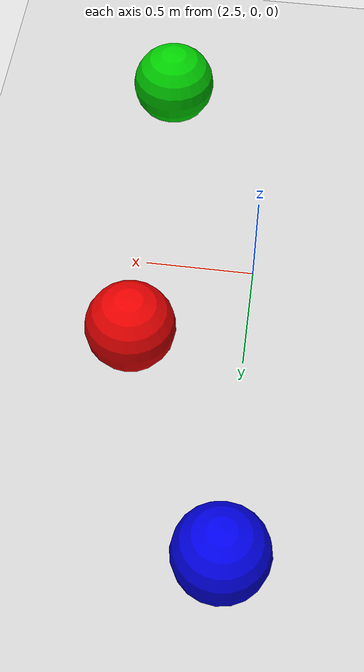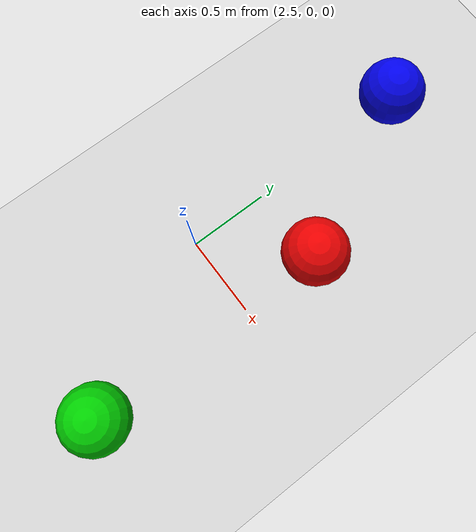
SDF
<?xml version="1.0" ?>
<sdf version="1.6">
  <world name="ball_world">

    <!-- Minimal lighting -->
    <light name="sun" type="directional">
      <cast_shadows>false</cast_shadows>
      <pose>0 0 10 0 0 0</pose>
      <diffuse>0.8 0.8 0.8 1</diffuse>
      <specular>0.0 0.0 0.0 1</specular>
      <direction>0.5 0.1 -0.9</direction>
    </light>

    <!-- Ground plane -->
    <model name="ground_plane">
      <static>true</static>
      <link name="link">
        <collision name="collision">
          <geometry><plane><normal>0 0 1</normal></plane></geometry>
          <surface><friction><ode><mu>1</mu><mu2>1</mu2></ode></friction></surface>
        </collision>
        <visual name="visual">
          <geometry><plane><normal>0 0 1</normal><size>20 20</size></plane></geometry>
          <material>
            <script>
              <uri>file://media/materials/scripts/gazebo.material</uri>
              <name>Gazebo/Grey</name>
            </script>
          </material>
        </visual>
      </link>
    </model>

    <!-- ===== RED BALL (target) ===== -->
    <model name="red_ball">
      <pose>3.0 0.5 0.2 0 0 0</pose>
      <link name="link">
        <collision name="collision">
          <geometry><sphere><radius>0.2</radius></sphere></geometry>
        </collision>
        <visual name="visual">
          <geometry><sphere><radius>0.2</radius></sphere></geometry>
          <material>
            <ambient>0.9 0.0 0.0 1</ambient>
            <diffuse>0.9 0.0 0.0 1</diffuse>
            <specular>0.1 0.0 0.0 1</specular>
          </material>
        </visual>
        <inertial>
          <mass>0.5</mass>
          <inertia><ixx>0.008</ixx><ixy>0</ixy><ixz>0</ixz>
                   <iyy>0.008</iyy><iyz>0</iyz><izz>0.008</izz></inertia>
        </inertial>
      </link>
    </model>

    <!-- ===== GREEN BALL (target) ===== -->
    <model name="green_ball">
      <pose>3.0 -1.0 0.2 0 0 0</pose>
      <link name="link">
        <collision name="collision">
          <geometry><sphere><radius>0.2</radius></sphere></geometry>
        </collision>
        <visual name="visual">
          <geometry><sphere><radius>0.2</radius></sphere></geometry>
          <material>
            <ambient>0.0 0.8 0.0 1</ambient>
            <diffuse>0.0 0.8 0.0 1</diffuse>
            <specular>0.0 0.1 0.0 1</specular>
          </material>
        </visual>
        <inertial>
          <mass>0.5</mass>
          <inertia><ixx>0.008</ixx><ixy>0</ixy><ixz>0</ixz>
                   <iyy>0.008</iyy><iyz>0</iyz><izz>0.008</izz></inertia>
        </inertial>
      </link>
    </model>

    <!-- ===== BLUE BALL (non-target / distractor) ===== -->
    <model name="blue_ball">
      <pose>2.5 1.5 0.2 0 0 0</pose>
      <link name="link">
        <collision name="collision">
          <geometry><sphere><radius>0.2</radius></sphere></geometry>
        </collision>
        <visual name="visual">
          <geometry><sphere><radius>0.2</radius></sphere></geometry>
          <material>
            <ambient>0.0 0.0 0.9 1</ambient>
            <diffuse>0.0 0.0 0.9 1</diffuse>
            <specular>0.0 0.0 0.1 1</specular>
          </material>
        </visual>
        <inertial>
          <mass>0.5</mass>
          <inertia><ixx>0.008</ixx><ixy>0</ixy><ixz>0</ixz>
                   <iyy>0.008</iyy><iyz>0</iyz><izz>0.008</izz></inertia>
        </inertial>
      </link>
    </model>

    <!-- Physics: keep it light for low-spec VM -->
    <physics type="ode">
      <max_step_size>0.01</max_step_size>
      <real_time_factor>1</real_time_factor>
      <real_time_update_rate>100</real_time_update_rate>
    </physics>

  </world>
</sdf>
